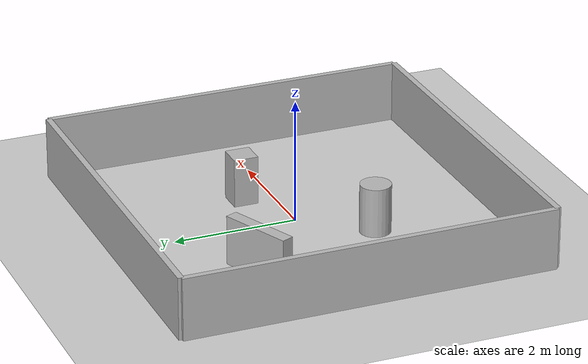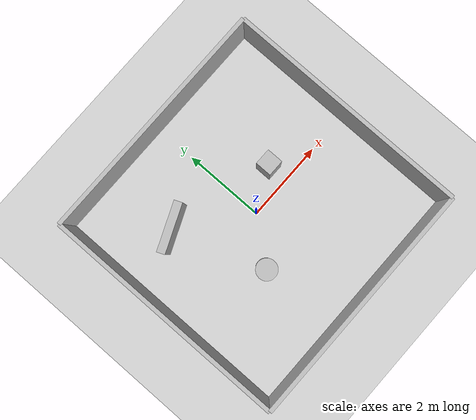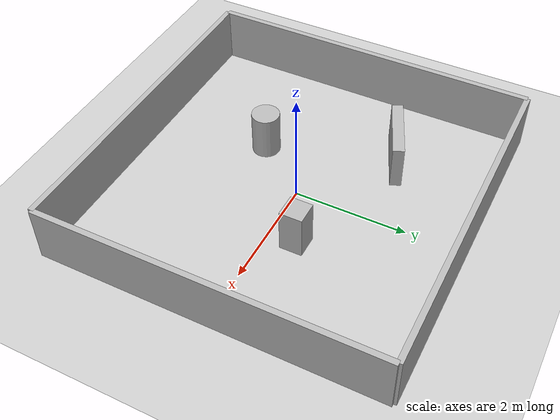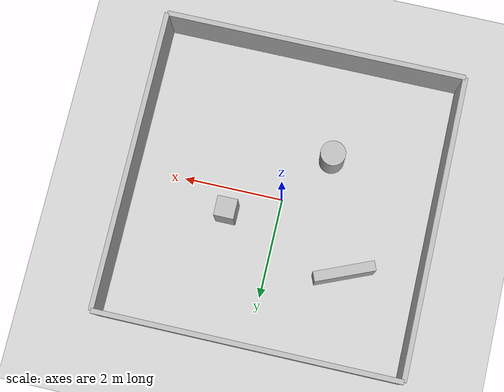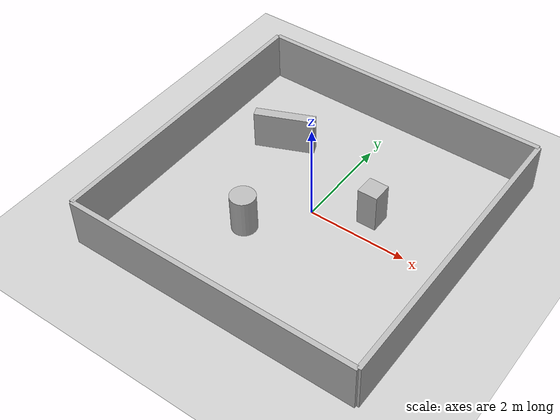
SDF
<?xml version="1.0"?>
<sdf version="1.6">
  <world name="simple_world">
    <include><uri>model://sun</uri></include>
    <include><uri>model://ground_plane</uri></include>

    <physics type="ode">
      <real_time_update_rate>1000.0</real_time_update_rate>
      <max_step_size>0.001</max_step_size>
    </physics>

    <!-- Outer boundary walls: 6m x 6m arena -->
    <model name="wall_north">
      <static>true</static>
      <pose>0 3 0.5 0 0 0</pose>
      <link name="link">
        <collision name="collision"><geometry><box><size>6 0.1 1</size></box></geometry></collision>
        <visual name="visual"><geometry><box><size>6 0.1 1</size></box></geometry></visual>
      </link>
    </model>
    <model name="wall_south">
      <static>true</static>
      <pose>0 -3 0.5 0 0 0</pose>
      <link name="link">
        <collision name="collision"><geometry><box><size>6 0.1 1</size></box></geometry></collision>
        <visual name="visual"><geometry><box><size>6 0.1 1</size></box></geometry></visual>
      </link>
    </model>
    <model name="wall_east">
      <static>true</static>
      <pose>3 0 0.5 0 0 1.5708</pose>
      <link name="link">
        <collision name="collision"><geometry><box><size>6 0.1 1</size></box></geometry></collision>
        <visual name="visual"><geometry><box><size>6 0.1 1</size></box></geometry></visual>
      </link>
    </model>
    <model name="wall_west">
      <static>true</static>
      <pose>-3 0 0.5 0 0 1.5708</pose>
      <link name="link">
        <collision name="collision"><geometry><box><size>6 0.1 1</size></box></geometry></collision>
        <visual name="visual"><geometry><box><size>6 0.1 1</size></box></geometry></visual>
      </link>
    </model>

    <!-- Interior obstacles so SLAM/costmaps/planner have something to do -->
    <model name="obstacle_1">
      <static>true</static>
      <pose>1.0 0.5 0.4 0 0 0</pose>
      <link name="link">
        <collision name="collision"><geometry><box><size>0.4 0.4 0.8</size></box></geometry></collision>
        <visual name="visual"><geometry><box><size>0.4 0.4 0.8</size></box></geometry></visual>
      </link>
    </model>
    <model name="obstacle_2">
      <static>true</static>
      <pose>-0.8 -1.0 0.4 0 0 0</pose>
      <link name="link">
        <collision name="collision"><geometry><cylinder><radius>0.25</radius><length>0.8</length></cylinder></geometry></collision>
        <visual name="visual"><geometry><cylinder><radius>0.25</radius><length>0.8</length></cylinder></geometry></visual>
      </link>
    </model>
    <model name="obstacle_3">
      <static>true</static>
      <pose>-1.5 1.2 0.4 0 0 0.4</pose>
      <link name="link">
        <collision name="collision"><geometry><box><size>1.2 0.2 0.8</size></box></geometry></collision>
        <visual name="visual"><geometry><box><size>1.2 0.2 0.8</size></box></geometry></visual>
      </link>
    </model>
  </world>
</sdf>
